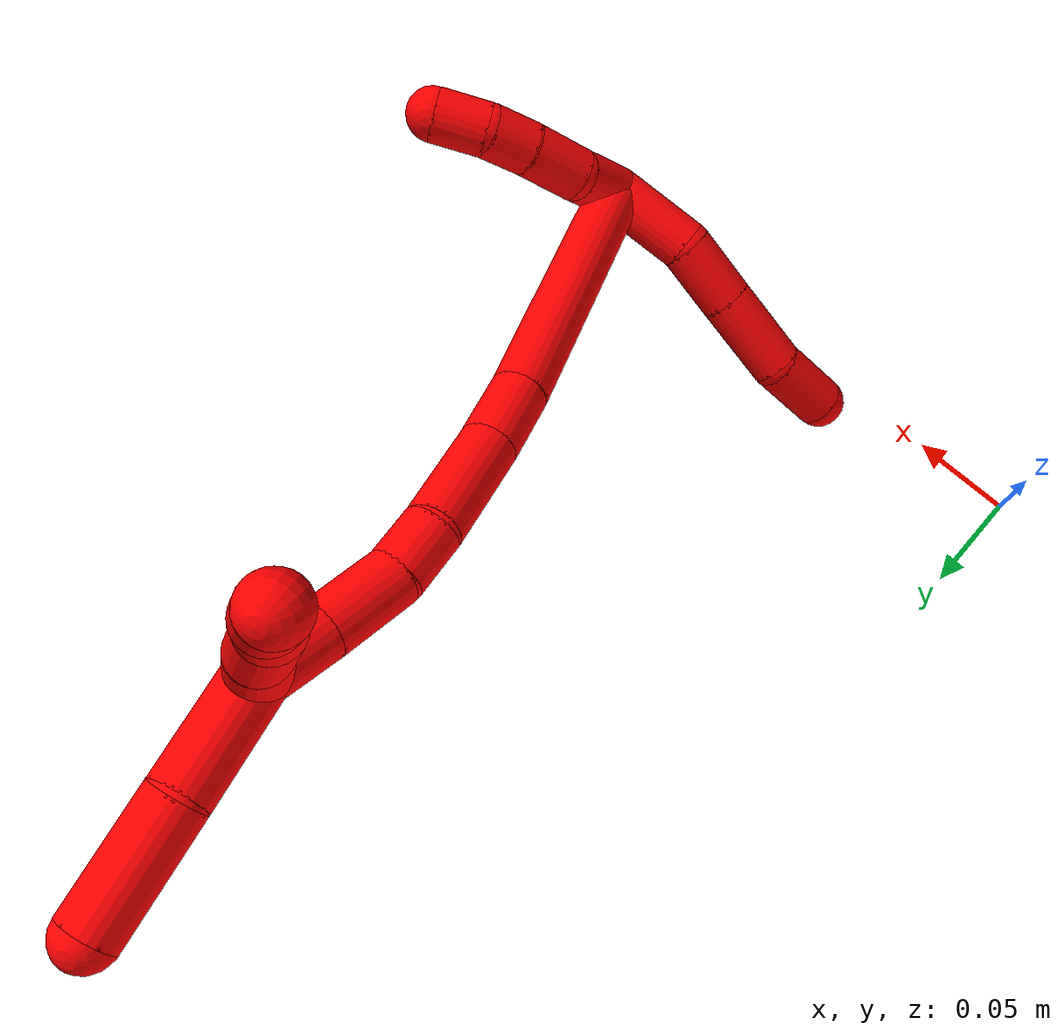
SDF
<sdf version="1.7">
 <world name="default">
  <model name="2">
   <static>0</static>
   <link name="2">
    <collision name="collision-cylinder-e_1_2_8">
     <pose>-0.012619 0.016271 -0.000299 -1.58916 -0.659568 0.670905</pose>
     <geometry><cylinder><radius>0.0125</radius><length>0.041186</length></cylinder></geometry>
     <surface>
      <friction><ode><mu>1.16</mu><mu2>1.16</mu2><slip1>0</slip1><slip2>0</slip2></ode></friction>
      <contact><ode><kp>1e+06</kp><kd>1</kd><max_vel>0</max_vel><min_depth>0.001</min_depth></ode></contact>
     </surface>
    </collision>
    <visual name="visual-cylinder-e_1_2_8">
     <pose>-0.012619 0.016271 -0.000299 -1.58916 -0.659568 0.670905</pose>
     <geometry><cylinder><radius>0.0125</radius><length>0.041186</length></cylinder></geometry>
     <material><ambient>1 0 0 1</ambient></material>
    </visual>
    <collision name="collision-cylinder-e_2_8_9">
     <pose>-0.030676 0.047789 -0.003172 -1.73806 -0.338184 0.398566</pose>
     <geometry><cylinder><radius>0.0125</radius><length>0.032782</length></cylinder></geometry>
     <surface>
      <friction><ode><mu>1.16</mu><mu2>1.16</mu2><slip1>0</slip1><slip2>0</slip2></ode></friction>
      <contact><ode><kp>1e+06</kp><kd>1</kd><max_vel>0</max_vel><min_depth>0.001</min_depth></ode></contact>
     </surface>
    </collision>
    <visual name="visual-cylinder-e_2_8_9">
     <pose>-0.030676 0.047789 -0.003172 -1.73806 -0.338184 0.398566</pose>
     <geometry><cylinder><radius>0.0125</radius><length>0.032782</length></cylinder></geometry>
     <material><ambient>1 0 0 1</ambient></material>
    </visual>
    <collision name="collision-cylinder-e_3_9_10">
     <pose>-0.04322 0.082355 -0.009078 -1.74158 -0.347727 0.411148</pose>
     <geometry><cylinder><radius>0.0125</radius><length>0.041706</length></cylinder></geometry>
     <surface>
      <friction><ode><mu>1.16</mu><mu2>1.16</mu2><slip1>0</slip1><slip2>0</slip2></ode></friction>
      <contact><ode><kp>1e+06</kp><kd>1</kd><max_vel>0</max_vel><min_depth>0.001</min_depth></ode></contact>
     </surface>
    </collision>
    <visual name="visual-cylinder-e_3_9_10">
     <pose>-0.04322 0.082355 -0.009078 -1.74158 -0.347727 0.411148</pose>
     <geometry><cylinder><radius>0.0125</radius><length>0.041706</length></cylinder></geometry>
     <material><ambient>1 0 0 1</ambient></material>
    </visual>
    <collision name="collision-cylinder-e_4_10_6">
     <pose>-0.056751 0.115651 -0.020024 -2.06961 -0.383702 0.632095</pose>
     <geometry><cylinder><radius>0.0125</radius><length>0.034326</length></cylinder></geometry>
     <surface>
      <friction><ode><mu>1.16</mu><mu2>1.16</mu2><slip1>0</slip1><slip2>0</slip2></ode></friction>
      <contact><ode><kp>1e+06</kp><kd>1</kd><max_vel>0</max_vel><min_depth>0.001</min_depth></ode></contact>
     </surface>
    </collision>
    <visual name="visual-cylinder-e_4_10_6">
     <pose>-0.056751 0.115651 -0.020024 -2.06961 -0.383702 0.632095</pose>
     <geometry><cylinder><radius>0.0125</radius><length>0.034326</length></cylinder></geometry>
     <material><ambient>1 0 0 1</ambient></material>
    </visual>
    <collision name="collision-cylinder-e_1_2_11">
     <pose>0.004532 -0.007484 0.010829 0.60473 0.331583 0.104294</pose>
     <geometry><cylinder><radius>0.0125</radius><length>0.027843</length></cylinder></geometry>
     <surface>
      <friction><ode><mu>1.16</mu><mu2>1.16</mu2><slip1>0</slip1><slip2>0</slip2></ode></friction>
      <contact><ode><kp>1e+06</kp><kd>1</kd><max_vel>0</max_vel><min_depth>0.001</min_depth></ode></contact>
     </surface>
    </collision>
    <visual name="visual-cylinder-e_1_2_11">
     <pose>0.004532 -0.007484 0.010829 0.60473 0.331583 0.104294</pose>
     <geometry><cylinder><radius>0.0125</radius><length>0.027843</length></cylinder></geometry>
     <material><ambient>1 0 0 1</ambient></material>
    </visual>
    <collision name="collision-cylinder-e_2_11_12">
     <pose>0.016133 -0.024063 0.028778 0.906588 0.549144 0.27273</pose>
     <geometry><cylinder><radius>0.0125</radius><length>0.027086</length></cylinder></geometry>
     <surface>
      <friction><ode><mu>1.16</mu><mu2>1.16</mu2><slip1>0</slip1><slip2>0</slip2></ode></friction>
      <contact><ode><kp>1e+06</kp><kd>1</kd><max_vel>0</max_vel><min_depth>0.001</min_depth></ode></contact>
     </surface>
    </collision>
    <visual name="visual-cylinder-e_2_11_12">
     <pose>0.016133 -0.024063 0.028778 0.906588 0.549144 0.27273</pose>
     <geometry><cylinder><radius>0.0125</radius><length>0.027086</length></cylinder></geometry>
     <material><ambient>1 0 0 1</ambient></material>
    </visual>
    <collision name="collision-cylinder-e_3_12_13">
     <pose>0.029377 -0.039804 0.041091 0.907533 0.63208 0.316298</pose>
     <geometry><cylinder><radius>0.0125</radius><length>0.020904</length></cylinder></geometry>
     <surface>
      <friction><ode><mu>1.16</mu><mu2>1.16</mu2><slip1>0</slip1><slip2>0</slip2></ode></friction>
      <contact><ode><kp>1e+06</kp><kd>1</kd><max_vel>0</max_vel><min_depth>0.001</min_depth></ode></contact>
     </surface>
    </collision>
    <visual name="visual-cylinder-e_3_12_13">
     <pose>0.029377 -0.039804 0.041091 0.907533 0.63208 0.316298</pose>
     <geometry><cylinder><radius>0.0125</radius><length>0.020904</length></cylinder></geometry>
     <material><ambient>1 0 0 1</ambient></material>
    </visual>
    <collision name="collision-cylinder-e_4_13_5">
     <pose>0.045169 -0.053013 0.049514 1.11343 0.920439 0.598527</pose>
     <geometry><cylinder><radius>0.0125</radius><length>0.024167</length></cylinder></geometry>
     <surface>
      <friction><ode><mu>1.16</mu><mu2>1.16</mu2><slip1>0</slip1><slip2>0</slip2></ode></friction>
      <contact><ode><kp>1e+06</kp><kd>1</kd><max_vel>0</max_vel><min_depth>0.001</min_depth></ode></contact>
     </surface>
    </collision>
    <visual name="visual-cylinder-e_4_13_5">
     <pose>0.045169 -0.053013 0.049514 1.11343 0.920439 0.598527</pose>
     <geometry><cylinder><radius>0.0125</radius><length>0.024167</length></cylinder></geometry>
     <material><ambient>1 0 0 1</ambient></material>
    </visual>
    <collision name="collision-cylinder-e_1_2_14">
     <pose>0.016333 0.028213 0.056516 -0.463002 0.253024 -0.059947</pose>
     <geometry><cylinder><radius>0.0125</radius><length>0.130488</length></cylinder></geometry>
     <surface>
      <friction><ode><mu>1.16</mu><mu2>1.16</mu2><slip1>0</slip1><slip2>0</slip2></ode></friction>
      <contact><ode><kp>1e+06</kp><kd>1</kd><max_vel>0</max_vel><min_depth>0.001</min_depth></ode></contact>
     </surface>
    </collision>
    <visual name="visual-cylinder-e_1_2_14">
     <pose>0.016333 0.028213 0.056516 -0.463002 0.253024 -0.059947</pose>
     <geometry><cylinder><radius>0.0125</radius><length>0.130488</length></cylinder></geometry>
     <material><ambient>1 0 0 1</ambient></material>
    </visual>
    <collision name="collision-cylinder-e_2_14_15">
     <pose>0.037159 0.062492 0.126852 -0.413699 0.289338 -0.061126</pose>
     <geometry><cylinder><radius>0.0125</radius><length>0.031495</length></cylinder></geometry>
     <surface>
      <friction><ode><mu>1.16</mu><mu2>1.16</mu2><slip1>0</slip1><slip2>0</slip2></ode></friction>
      <contact><ode><kp>1e+06</kp><kd>1</kd><max_vel>0</max_vel><min_depth>0.001</min_depth></ode></contact>
     </surface>
    </collision>
    <visual name="visual-cylinder-e_2_14_15">
     <pose>0.037159 0.062492 0.126852 -0.413699 0.289338 -0.061126</pose>
     <geometry><cylinder><radius>0.0125</radius><length>0.031495</length></cylinder></geometry>
     <material><ambient>1 0 0 1</ambient></material>
    </visual>
    <collision name="collision-cylinder-e_3_15_16">
     <pose>0.048175 0.075963 0.163201 -0.317494 0.268427 -0.043227</pose>
     <geometry><cylinder><radius>0.0125</radius><length>0.049191</length></cylinder></geometry>
     <surface>
      <friction><ode><mu>1.16</mu><mu2>1.16</mu2><slip1>0</slip1><slip2>0</slip2></ode></friction>
      <contact><ode><kp>1e+06</kp><kd>1</kd><max_vel>0</max_vel><min_depth>0.001</min_depth></ode></contact>
     </surface>
    </collision>
    <visual name="visual-cylinder-e_3_15_16">
     <pose>0.048175 0.075963 0.163201 -0.317494 0.268427 -0.043227</pose>
     <geometry><cylinder><radius>0.0125</radius><length>0.049191</length></cylinder></geometry>
     <material><ambient>1 0 0 1</ambient></material>
    </visual>
    <collision name="collision-cylinder-e_4_16_17">
     <pose>0.060129 0.087616 0.195943 -0.39433 0.456445 -0.09273</pose>
     <geometry><cylinder><radius>0.0125</radius><length>0.024647</length></cylinder></geometry>
     <surface>
      <friction><ode><mu>1.16</mu><mu2>1.16</mu2><slip1>0</slip1><slip2>0</slip2></ode></friction>
      <contact><ode><kp>1e+06</kp><kd>1</kd><max_vel>0</max_vel><min_depth>0.001</min_depth></ode></contact>
     </surface>
    </collision>
    <visual name="visual-cylinder-e_4_16_17">
     <pose>0.060129 0.087616 0.195943 -0.39433 0.456445 -0.09273</pose>
     <geometry><cylinder><radius>0.0125</radius><length>0.024647</length></cylinder></geometry>
     <material><ambient>1 0 0 1</ambient></material>
    </visual>
    <collision name="collision-cylinder-e_5_17_18">
     <pose>0.074979 0.094027 0.221001 -0.144559 0.560616 -0.041683</pose>
     <geometry><cylinder><radius>0.0125</radius><length>0.035425</length></cylinder></geometry>
     <surface>
      <friction><ode><mu>1.16</mu><mu2>1.16</mu2><slip1>0</slip1><slip2>0</slip2></ode></friction>
      <contact><ode><kp>1e+06</kp><kd>1</kd><max_vel>0</max_vel><min_depth>0.001</min_depth></ode></contact>
     </surface>
    </collision>
    <visual name="visual-cylinder-e_5_17_18">
     <pose>0.074979 0.094027 0.221001 -0.144559 0.560616 -0.041683</pose>
     <geometry><cylinder><radius>0.0125</radius><length>0.035425</length></cylinder></geometry>
     <material><ambient>1 0 0 1</ambient></material>
    </visual>
    <collision name="collision-cylinder-e_6_18_1">
     <pose>0.091851 0.097317 0.248087 -0.091945 0.54508 -0.025715</pose>
     <geometry><cylinder><radius>0.0125</radius><length>0.028754</length></cylinder></geometry>
     <surface>
      <friction><ode><mu>1.16</mu><mu2>1.16</mu2><slip1>0</slip1><slip2>0</slip2></ode></friction>
      <contact><ode><kp>1e+06</kp><kd>1</kd><max_vel>0</max_vel><min_depth>0.001</min_depth></ode></contact>
     </surface>
    </collision>
    <visual name="visual-cylinder-e_6_18_1">
     <pose>0.091851 0.097317 0.248087 -0.091945 0.54508 -0.025715</pose>
     <geometry><cylinder><radius>0.0125</radius><length>0.028754</length></cylinder></geometry>
     <material><ambient>1 0 0 1</ambient></material>
    </visual>
    <collision name="collision-cylinder-e_1_1_19">
     <pose>0.091502 0.090851 0.268763 0.733129 -0.602349 -0.237386</pose>
     <geometry><cylinder><radius>0.0125</radius><length>0.027547</length></cylinder></geometry>
     <surface>
      <friction><ode><mu>1.16</mu><mu2>1.16</mu2><slip1>0</slip1><slip2>0</slip2></ode></friction>
      <contact><ode><kp>1e+06</kp><kd>1</kd><max_vel>0</max_vel><min_depth>0.001</min_depth></ode></contact>
     </surface>
    </collision>
    <visual name="visual-cylinder-e_1_1_19">
     <pose>0.091502 0.090851 0.268763 0.733129 -0.602349 -0.237386</pose>
     <geometry><cylinder><radius>0.0125</radius><length>0.027547</length></cylinder></geometry>
     <material><ambient>1 0 0 1</ambient></material>
    </visual>
    <collision name="collision-cylinder-e_2_19_20">
     <pose>0.074382 0.076113 0.285165 0.73082 -0.716271 -0.284456</pose>
     <geometry><cylinder><radius>0.0125</radius><length>0.028376</length></cylinder></geometry>
     <surface>
      <friction><ode><mu>1.16</mu><mu2>1.16</mu2><slip1>0</slip1><slip2>0</slip2></ode></friction>
      <contact><ode><kp>1e+06</kp><kd>1</kd><max_vel>0</max_vel><min_depth>0.001</min_depth></ode></contact>
     </surface>
    </collision>
    <visual name="visual-cylinder-e_2_19_20">
     <pose>0.074382 0.076113 0.285165 0.73082 -0.716271 -0.284456</pose>
     <geometry><cylinder><radius>0.0125</radius><length>0.028376</length></cylinder></geometry>
     <material><ambient>1 0 0 1</ambient></material>
    </visual>
    <collision name="collision-cylinder-e_3_20_21">
     <pose>0.059725 0.064253 0.300431 0.573787 -0.551259 -0.166502</pose>
     <geometry><cylinder><radius>0.0125</radius><length>0.020399</length></cylinder></geometry>
     <surface>
      <friction><ode><mu>1.16</mu><mu2>1.16</mu2><slip1>0</slip1><slip2>0</slip2></ode></friction>
      <contact><ode><kp>1e+06</kp><kd>1</kd><max_vel>0</max_vel><min_depth>0.001</min_depth></ode></contact>
     </surface>
    </collision>
    <visual name="visual-cylinder-e_3_20_21">
     <pose>0.059725 0.064253 0.300431 0.573787 -0.551259 -0.166502</pose>
     <geometry><cylinder><radius>0.0125</radius><length>0.020399</length></cylinder></geometry>
     <material><ambient>1 0 0 1</ambient></material>
    </visual>
    <collision name="collision-cylinder-e_4_21_4">
     <pose>0.04721 0.055077 0.316024 0.493265 -0.650879 -0.169498</pose>
     <geometry><cylinder><radius>0.0125</radius><length>0.023678</length></cylinder></geometry>
     <surface>
      <friction><ode><mu>1.16</mu><mu2>1.16</mu2><slip1>0</slip1><slip2>0</slip2></ode></friction>
      <contact><ode><kp>1e+06</kp><kd>1</kd><max_vel>0</max_vel><min_depth>0.001</min_depth></ode></contact>
     </surface>
    </collision>
    <visual name="visual-cylinder-e_4_21_4">
     <pose>0.04721 0.055077 0.316024 0.493265 -0.650879 -0.169498</pose>
     <geometry><cylinder><radius>0.0125</radius><length>0.023678</length></cylinder></geometry>
     <material><ambient>1 0 0 1</ambient></material>
    </visual>
    <collision name="collision-cylinder-e_1_1_22">
     <pose>0.109805 0.109834 0.279053 -0.546431 0.4468 -0.127157</pose>
     <geometry><cylinder><radius>0.0125</radius><length>0.048602</length></cylinder></geometry>
     <surface>
      <friction><ode><mu>1.16</mu><mu2>1.16</mu2><slip1>0</slip1><slip2>0</slip2></ode></friction>
      <contact><ode><kp>1e+06</kp><kd>1</kd><max_vel>0</max_vel><min_depth>0.001</min_depth></ode></contact>
     </surface>
    </collision>
    <visual name="visual-cylinder-e_1_1_22">
     <pose>0.109805 0.109834 0.279053 -0.546431 0.4468 -0.127157</pose>
     <geometry><cylinder><radius>0.0125</radius><length>0.048602</length></cylinder></geometry>
     <material><ambient>1 0 0 1</ambient></material>
    </visual>
    <collision name="collision-cylinder-e_2_22_3">
     <pose>0.134393 0.135166 0.314134 -0.705957 0.580186 -0.219069</pose>
     <geometry><cylinder><radius>0.0125</radius><length>0.051398</length></cylinder></geometry>
     <surface>
      <friction><ode><mu>1.16</mu><mu2>1.16</mu2><slip1>0</slip1><slip2>0</slip2></ode></friction>
      <contact><ode><kp>1e+06</kp><kd>1</kd><max_vel>0</max_vel><min_depth>0.001</min_depth></ode></contact>
     </surface>
    </collision>
    <visual name="visual-cylinder-e_2_22_3">
     <pose>0.134393 0.135166 0.314134 -0.705957 0.580186 -0.219069</pose>
     <geometry><cylinder><radius>0.0125</radius><length>0.051398</length></cylinder></geometry>
     <material><ambient>1 0 0 1</ambient></material>
    </visual>
    <collision name="collision-sphere-3">
     <pose>0.148481 0.149111 0.330491 0 -0 0</pose>
     <geometry><sphere><radius>0.0125</radius></sphere></geometry>
     <surface>
      <friction><ode><mu>1.16</mu><mu2>1.16</mu2><slip1>0</slip1><slip2>0</slip2></ode></friction>
      <contact><ode><kp>1e+06</kp><kd>1</kd><max_vel>0</max_vel><min_depth>0.001</min_depth></ode></contact>
     </surface>
    </collision>
    <visual name="visual-sphere-3">
     <pose>0.148481 0.149111 0.330491 0 -0 0</pose>
     <geometry><sphere><radius>0.0125</radius></sphere></geometry>
     <material><ambient>1 0 0 1</ambient></material>
    </visual>
    <collision name="collision-sphere-22">
     <pose>0.120305 0.121222 0.297778 0 -0 0</pose>
     <geometry><sphere><radius>0.0125</radius></sphere></geometry>
     <surface>
      <friction><ode><mu>1.16</mu><mu2>1.16</mu2><slip1>0</slip1><slip2>0</slip2></ode></friction>
      <contact><ode><kp>1e+06</kp><kd>1</kd><max_vel>0</max_vel><min_depth>0.001</min_depth></ode></contact>
     </surface>
    </collision>
    <visual name="visual-sphere-22">
     <pose>0.120305 0.121222 0.297778 0 -0 0</pose>
     <geometry><sphere><radius>0.0125</radius></sphere></geometry>
     <material><ambient>1 0 0 1</ambient></material>
    </visual>
    <collision name="collision-sphere-4">
     <pose>0.040037 0.050618 0.324319 0 -0 0</pose>
     <geometry><sphere><radius>0.0125</radius></sphere></geometry>
     <surface>
      <friction><ode><mu>1.16</mu><mu2>1.16</mu2><slip1>0</slip1><slip2>0</slip2></ode></friction>
      <contact><ode><kp>1e+06</kp><kd>1</kd><max_vel>0</max_vel><min_depth>0.001</min_depth></ode></contact>
     </surface>
    </collision>
    <visual name="visual-sphere-4">
     <pose>0.040037 0.050618 0.324319 0 -0 0</pose>
     <geometry><sphere><radius>0.0125</radius></sphere></geometry>
     <material><ambient>1 0 0 1</ambient></material>
    </visual>
    <collision name="collision-sphere-21">
     <pose>0.054383 0.059537 0.307728 0 -0 0</pose>
     <geometry><sphere><radius>0.0125</radius></sphere></geometry>
     <surface>
      <friction><ode><mu>1.16</mu><mu2>1.16</mu2><slip1>0</slip1><slip2>0</slip2></ode></friction>
      <contact><ode><kp>1e+06</kp><kd>1</kd><max_vel>0</max_vel><min_depth>0.001</min_depth></ode></contact>
     </surface>
    </collision>
    <visual name="visual-sphere-21">
     <pose>0.054383 0.059537 0.307728 0 -0 0</pose>
     <geometry><sphere><radius>0.0125</radius></sphere></geometry>
     <material><ambient>1 0 0 1</ambient></material>
    </visual>
    <collision name="collision-sphere-20">
     <pose>0.065067 0.06897 0.293134 0 -0 0</pose>
     <geometry><sphere><radius>0.0125</radius></sphere></geometry>
     <surface>
      <friction><ode><mu>1.16</mu><mu2>1.16</mu2><slip1>0</slip1><slip2>0</slip2></ode></friction>
      <contact><ode><kp>1e+06</kp><kd>1</kd><max_vel>0</max_vel><min_depth>0.001</min_depth></ode></contact>
     </surface>
    </collision>
    <visual name="visual-sphere-20">
     <pose>0.065067 0.06897 0.293134 0 -0 0</pose>
     <geometry><sphere><radius>0.0125</radius></sphere></geometry>
     <material><ambient>1 0 0 1</ambient></material>
    </visual>
    <collision name="collision-sphere-11">
     <pose>0.009064 -0.014967 0.021657 0 -0 0</pose>
     <geometry><sphere><radius>0.0125</radius></sphere></geometry>
     <surface>
      <friction><ode><mu>1.16</mu><mu2>1.16</mu2><slip1>0</slip1><slip2>0</slip2></ode></friction>
      <contact><ode><kp>1e+06</kp><kd>1</kd><max_vel>0</max_vel><min_depth>0.001</min_depth></ode></contact>
     </surface>
    </collision>
    <visual name="visual-sphere-11">
     <pose>0.009064 -0.014967 0.021657 0 -0 0</pose>
     <geometry><sphere><radius>0.0125</radius></sphere></geometry>
     <material><ambient>1 0 0 1</ambient></material>
    </visual>
    <collision name="collision-sphere-6">
     <pose>-0.063176 0.129627 -0.027637 0 -0 0</pose>
     <geometry><sphere><radius>0.0125</radius></sphere></geometry>
     <surface>
      <friction><ode><mu>1.16</mu><mu2>1.16</mu2><slip1>0</slip1><slip2>0</slip2></ode></friction>
      <contact><ode><kp>1e+06</kp><kd>1</kd><max_vel>0</max_vel><min_depth>0.001</min_depth></ode></contact>
     </surface>
    </collision>
    <visual name="visual-sphere-6">
     <pose>-0.063176 0.129627 -0.027637 0 -0 0</pose>
     <geometry><sphere><radius>0.0125</radius></sphere></geometry>
     <material><ambient>1 0 0 1</ambient></material>
    </visual>
    <collision name="collision-sphere-10">
     <pose>-0.050326 0.101675 -0.01241 0 -0 0</pose>
     <geometry><sphere><radius>0.0125</radius></sphere></geometry>
     <surface>
      <friction><ode><mu>1.16</mu><mu2>1.16</mu2><slip1>0</slip1><slip2>0</slip2></ode></friction>
      <contact><ode><kp>1e+06</kp><kd>1</kd><max_vel>0</max_vel><min_depth>0.001</min_depth></ode></contact>
     </surface>
    </collision>
    <visual name="visual-sphere-10">
     <pose>-0.050326 0.101675 -0.01241 0 -0 0</pose>
     <geometry><sphere><radius>0.0125</radius></sphere></geometry>
     <material><ambient>1 0 0 1</ambient></material>
    </visual>
    <collision name="collision-sphere-9">
     <pose>-0.036114 0.063036 -0.005746 0 -0 0</pose>
     <geometry><sphere><radius>0.0125</radius></sphere></geometry>
     <surface>
      <friction><ode><mu>1.16</mu><mu2>1.16</mu2><slip1>0</slip1><slip2>0</slip2></ode></friction>
      <contact><ode><kp>1e+06</kp><kd>1</kd><max_vel>0</max_vel><min_depth>0.001</min_depth></ode></contact>
     </surface>
    </collision>
    <visual name="visual-sphere-9">
     <pose>-0.036114 0.063036 -0.005746 0 -0 0</pose>
     <geometry><sphere><radius>0.0125</radius></sphere></geometry>
     <material><ambient>1 0 0 1</ambient></material>
    </visual>
    <collision name="collision-sphere-2">
     <geometry><sphere><radius>0.0125</radius></sphere></geometry>
     <surface>
      <friction><ode><mu>1.16</mu><mu2>1.16</mu2><slip1>0</slip1><slip2>0</slip2></ode></friction>
      <contact><ode><kp>1e+06</kp><kd>1</kd><max_vel>0</max_vel><min_depth>0.001</min_depth></ode></contact>
     </surface>
    </collision>
    <visual name="visual-sphere-2">
     <geometry><sphere><radius>0.0125</radius></sphere></geometry>
     <material><ambient>1 0 0 1</ambient></material>
    </visual>
    <collision name="collision-sphere-19">
     <pose>0.083698 0.083255 0.277197 0 -0 0</pose>
     <geometry><sphere><radius>0.0125</radius></sphere></geometry>
     <surface>
      <friction><ode><mu>1.16</mu><mu2>1.16</mu2><slip1>0</slip1><slip2>0</slip2></ode></friction>
      <contact><ode><kp>1e+06</kp><kd>1</kd><max_vel>0</max_vel><min_depth>0.001</min_depth></ode></contact>
     </surface>
    </collision>
    <visual name="visual-sphere-19">
     <pose>0.083698 0.083255 0.277197 0 -0 0</pose>
     <geometry><sphere><radius>0.0125</radius></sphere></geometry>
     <material><ambient>1 0 0 1</ambient></material>
    </visual>
    <collision name="collision-sphere-8">
     <pose>-0.025238 0.032542 -0.000598 0 -0 0</pose>
     <geometry><sphere><radius>0.0125</radius></sphere></geometry>
     <surface>
      <friction><ode><mu>1.16</mu><mu2>1.16</mu2><slip1>0</slip1><slip2>0</slip2></ode></friction>
      <contact><ode><kp>1e+06</kp><kd>1</kd><max_vel>0</max_vel><min_depth>0.001</min_depth></ode></contact>
     </surface>
    </collision>
    <visual name="visual-sphere-8">
     <pose>-0.025238 0.032542 -0.000598 0 -0 0</pose>
     <geometry><sphere><radius>0.0125</radius></sphere></geometry>
     <material><ambient>1 0 0 1</ambient></material>
    </visual>
    <collision name="collision-sphere-12">
     <pose>0.023202 -0.03316 0.035899 0 -0 0</pose>
     <geometry><sphere><radius>0.0125</radius></sphere></geometry>
     <surface>
      <friction><ode><mu>1.16</mu><mu2>1.16</mu2><slip1>0</slip1><slip2>0</slip2></ode></friction>
      <contact><ode><kp>1e+06</kp><kd>1</kd><max_vel>0</max_vel><min_depth>0.001</min_depth></ode></contact>
     </surface>
    </collision>
    <visual name="visual-sphere-12">
     <pose>0.023202 -0.03316 0.035899 0 -0 0</pose>
     <geometry><sphere><radius>0.0125</radius></sphere></geometry>
     <material><ambient>1 0 0 1</ambient></material>
    </visual>
    <collision name="collision-sphere-13">
     <pose>0.035552 -0.046449 0.046283 0 -0 0</pose>
     <geometry><sphere><radius>0.0125</radius></sphere></geometry>
     <surface>
      <friction><ode><mu>1.16</mu><mu2>1.16</mu2><slip1>0</slip1><slip2>0</slip2></ode></friction>
      <contact><ode><kp>1e+06</kp><kd>1</kd><max_vel>0</max_vel><min_depth>0.001</min_depth></ode></contact>
     </surface>
    </collision>
    <visual name="visual-sphere-13">
     <pose>0.035552 -0.046449 0.046283 0 -0 0</pose>
     <geometry><sphere><radius>0.0125</radius></sphere></geometry>
     <material><ambient>1 0 0 1</ambient></material>
    </visual>
    <collision name="collision-sphere-5">
     <pose>0.054786 -0.059578 0.052745 0 -0 0</pose>
     <geometry><sphere><radius>0.0125</radius></sphere></geometry>
     <surface>
      <friction><ode><mu>1.16</mu><mu2>1.16</mu2><slip1>0</slip1><slip2>0</slip2></ode></friction>
      <contact><ode><kp>1e+06</kp><kd>1</kd><max_vel>0</max_vel><min_depth>0.001</min_depth></ode></contact>
     </surface>
    </collision>
    <visual name="visual-sphere-5">
     <pose>0.054786 -0.059578 0.052745 0 -0 0</pose>
     <geometry><sphere><radius>0.0125</radius></sphere></geometry>
     <material><ambient>1 0 0 1</ambient></material>
    </visual>
    <collision name="collision-sphere-14">
     <pose>0.032666 0.056425 0.113033 0 -0 0</pose>
     <geometry><sphere><radius>0.0125</radius></sphere></geometry>
     <surface>
      <friction><ode><mu>1.16</mu><mu2>1.16</mu2><slip1>0</slip1><slip2>0</slip2></ode></friction>
      <contact><ode><kp>1e+06</kp><kd>1</kd><max_vel>0</max_vel><min_depth>0.001</min_depth></ode></contact>
     </surface>
    </collision>
    <visual name="visual-sphere-14">
     <pose>0.032666 0.056425 0.113033 0 -0 0</pose>
     <geometry><sphere><radius>0.0125</radius></sphere></geometry>
     <material><ambient>1 0 0 1</ambient></material>
    </visual>
    <collision name="collision-sphere-15">
     <pose>0.041652 0.06856 0.140672 0 -0 0</pose>
     <geometry><sphere><radius>0.0125</radius></sphere></geometry>
     <surface>
      <friction><ode><mu>1.16</mu><mu2>1.16</mu2><slip1>0</slip1><slip2>0</slip2></ode></friction>
      <contact><ode><kp>1e+06</kp><kd>1</kd><max_vel>0</max_vel><min_depth>0.001</min_depth></ode></contact>
     </surface>
    </collision>
    <visual name="visual-sphere-15">
     <pose>0.041652 0.06856 0.140672 0 -0 0</pose>
     <geometry><sphere><radius>0.0125</radius></sphere></geometry>
     <material><ambient>1 0 0 1</ambient></material>
    </visual>
    <collision name="collision-sphere-16">
     <pose>0.054698 0.083367 0.185731 0 -0 0</pose>
     <geometry><sphere><radius>0.0125</radius></sphere></geometry>
     <surface>
      <friction><ode><mu>1.16</mu><mu2>1.16</mu2><slip1>0</slip1><slip2>0</slip2></ode></friction>
      <contact><ode><kp>1e+06</kp><kd>1</kd><max_vel>0</max_vel><min_depth>0.001</min_depth></ode></contact>
     </surface>
    </collision>
    <visual name="visual-sphere-16">
     <pose>0.054698 0.083367 0.185731 0 -0 0</pose>
     <geometry><sphere><radius>0.0125</radius></sphere></geometry>
     <material><ambient>1 0 0 1</ambient></material>
    </visual>
    <collision name="collision-sphere-17">
     <pose>0.065561 0.091866 0.206156 0 -0 0</pose>
     <geometry><sphere><radius>0.0125</radius></sphere></geometry>
     <surface>
      <friction><ode><mu>1.16</mu><mu2>1.16</mu2><slip1>0</slip1><slip2>0</slip2></ode></friction>
      <contact><ode><kp>1e+06</kp><kd>1</kd><max_vel>0</max_vel><min_depth>0.001</min_depth></ode></contact>
     </surface>
    </collision>
    <visual name="visual-sphere-17">
     <pose>0.065561 0.091866 0.206156 0 -0 0</pose>
     <geometry><sphere><radius>0.0125</radius></sphere></geometry>
     <material><ambient>1 0 0 1</ambient></material>
    </visual>
    <collision name="collision-sphere-18">
     <pose>0.084397 0.096188 0.235846 0 -0 0</pose>
     <geometry><sphere><radius>0.0125</radius></sphere></geometry>
     <surface>
      <friction><ode><mu>1.16</mu><mu2>1.16</mu2><slip1>0</slip1><slip2>0</slip2></ode></friction>
      <contact><ode><kp>1e+06</kp><kd>1</kd><max_vel>0</max_vel><min_depth>0.001</min_depth></ode></contact>
     </surface>
    </collision>
    <visual name="visual-sphere-18">
     <pose>0.084397 0.096188 0.235846 0 -0 0</pose>
     <geometry><sphere><radius>0.0125</radius></sphere></geometry>
     <material><ambient>1 0 0 1</ambient></material>
    </visual>
    <collision name="collision-sphere-1">
     <pose>0.099305 0.098446 0.260329 0 -0 0</pose>
     <geometry><sphere><radius>0.0125</radius></sphere></geometry>
     <surface>
      <friction><ode><mu>1.16</mu><mu2>1.16</mu2><slip1>0</slip1><slip2>0</slip2></ode></friction>
      <contact><ode><kp>1e+06</kp><kd>1</kd><max_vel>0</max_vel><min_depth>0.001</min_depth></ode></contact>
     </surface>
    </collision>
    <visual name="visual-sphere-1">
     <pose>0.099305 0.098446 0.260329 0 -0 0</pose>
     <geometry><sphere><radius>0.0125</radius></sphere></geometry>
     <material><ambient>1 0 0 1</ambient></material>
    </visual>
    <inertial>
     <pose>0.038207 0.058541 0.133279 0 -0 0</pose>
     <mass>0.75</mass>
     <inertia>
      <ixx>0.000263</ixx>
      <ixy>0</ixy>
      <ixz>0</ixz>
      <iyy>0.000242</iyy>
      <iyz>0</iyz>
      <izz>-0.000138</izz>
     </inertia>
    </inertial>
   </link>
   <pose>0.232836 0.029982 0.095895 -0.597812 0.355506 0.812271</pose>
  </model>
 </world>
</sdf>
